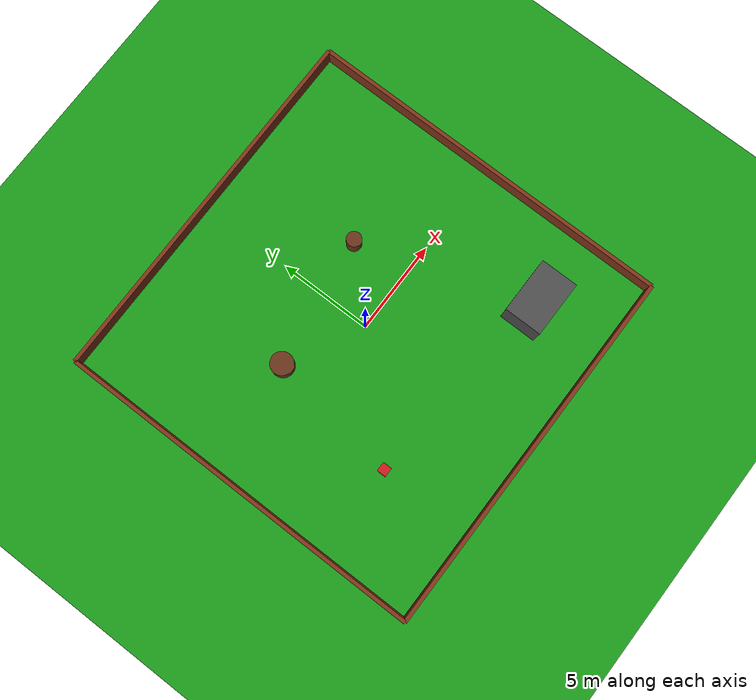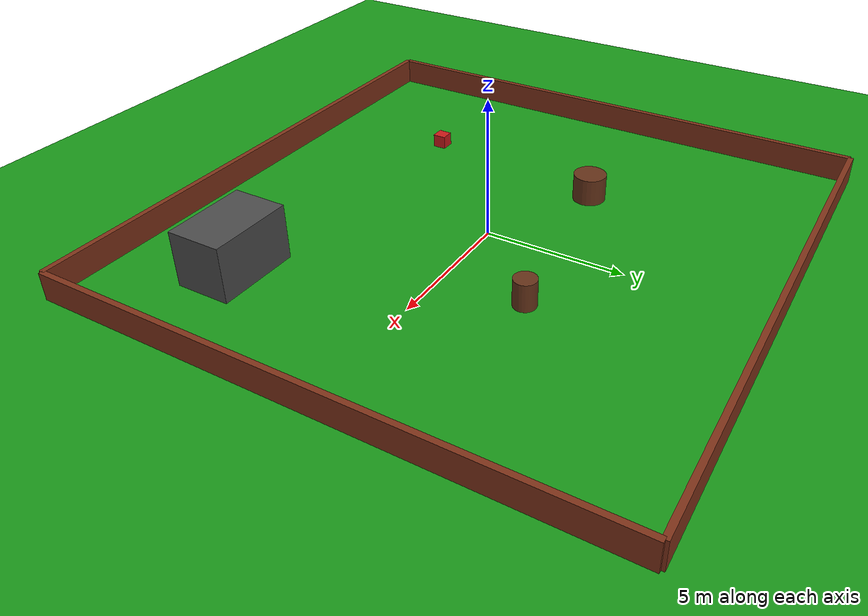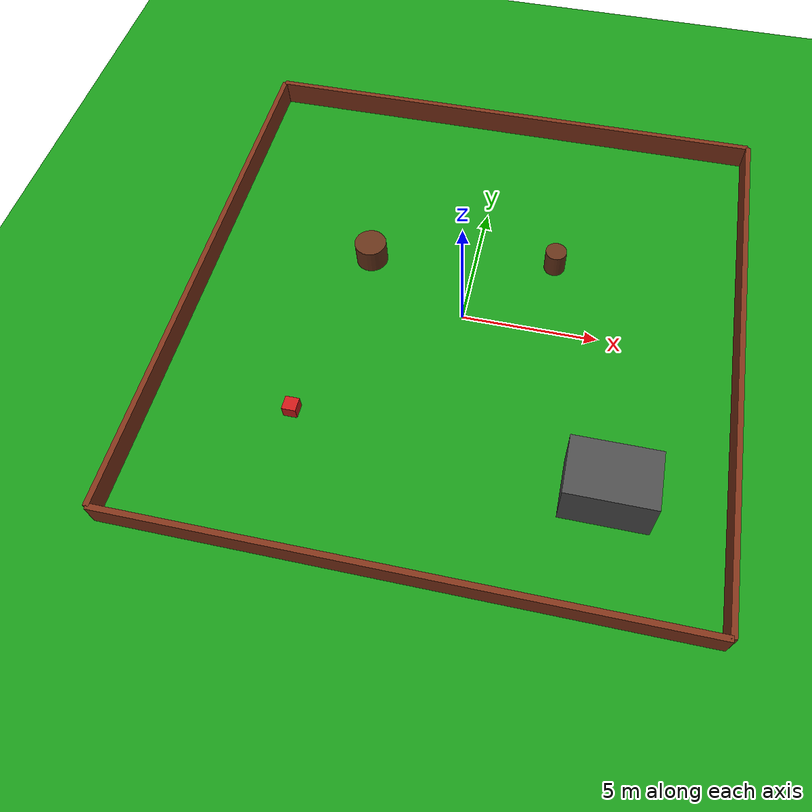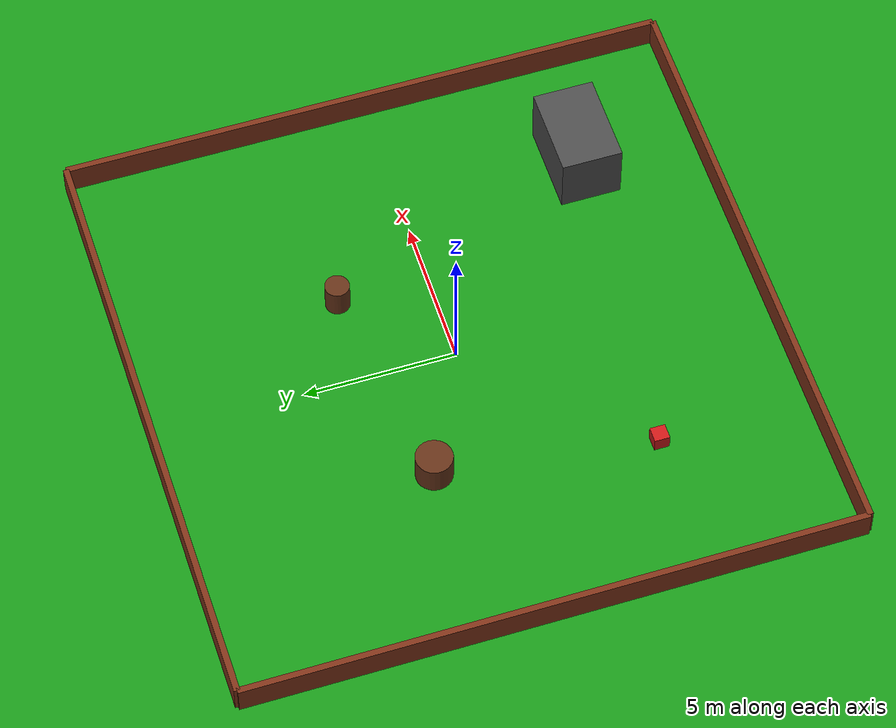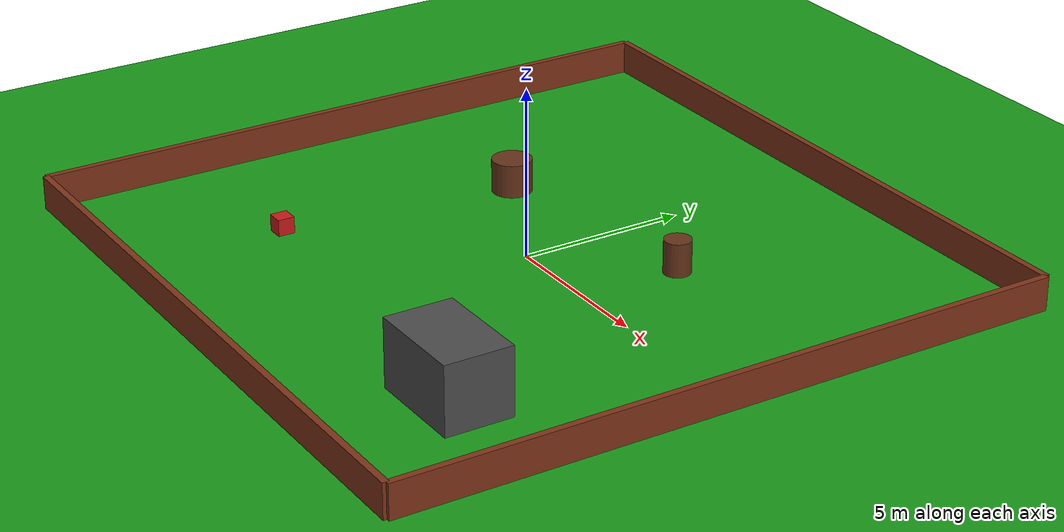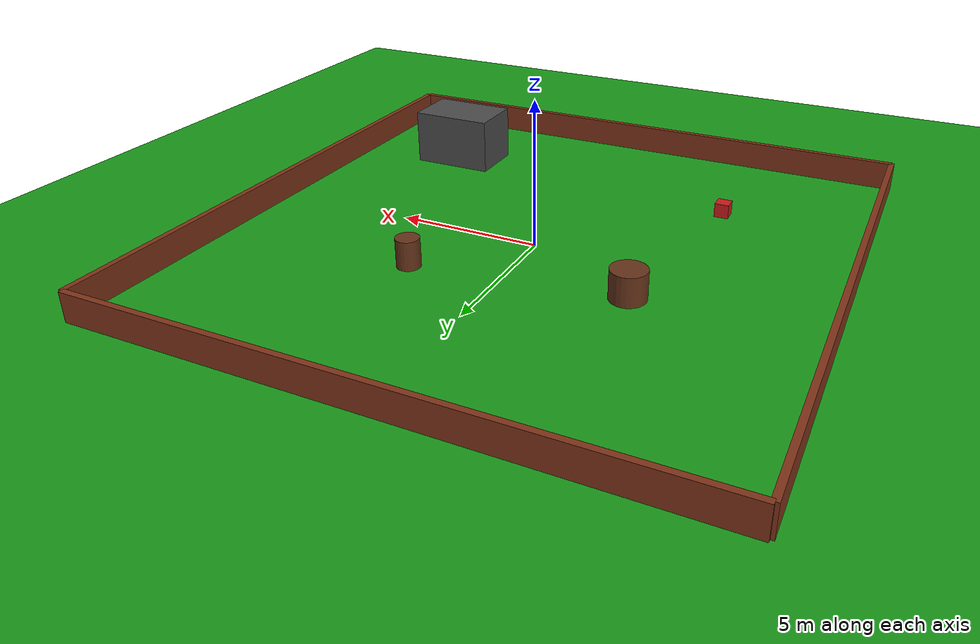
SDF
<?xml version="1.0" ?>
<sdf version="1.8">
  <world name="hard_lawn">

    <spherical_coordinates>
      <surface_model>EARTH_WGS84</surface_model>
      <world_frame_orientation>ENU</world_frame_orientation>
      <latitude_deg>0.0</latitude_deg>
      <longitude_deg>0.0</longitude_deg>
      <elevation>0.0</elevation>
      <heading_deg>0.0</heading_deg>
    </spherical_coordinates>

    <light type="directional" name="sun">
      <cast_shadows>true</cast_shadows>
      <pose>0 0 10 0 0 0</pose>
      <diffuse>0.8 0.8 0.8 1</diffuse>
      <specular>0.2 0.2 0.2 1</specular>
      <direction>-0.5 0.1 -0.9</direction>
    </light>

    <!-- Ground Plane (Grass) -->
    <model name="ground_plane">
      <static>true</static>
      <link name="link">
        <collision name="collision">
          <geometry>
            <plane>
              <normal>0 0 1</normal>
              <size>20 20</size>
            </plane>
          </geometry>
        </collision>
        <visual name="visual">
          <geometry>
            <plane>
              <normal>0 0 1</normal>
              <size>20 20</size>
            </plane>
          </geometry>
          <material>
            <ambient>0.1 0.6 0.1 1</ambient>
            <diffuse>0.1 0.6 0.1 1</diffuse>
            <specular>0 0 0 0</specular>
          </material>
        </visual>
      </link>
    </model>

    <!-- Outer Boundary Fence -->
    <model name="wall_north">
      <static>true</static>
      <pose>0 10 0.5 0 0 0</pose>
      <link name="link">
        <collision name="col"><geometry><box><size>20 0.2 1</size></box></geometry></collision>
        <visual name="vis"><geometry><box><size>20 0.2 1</size></box></geometry>
          <material><ambient>0.5 0.2 0.1 1</ambient></material>
        </visual>
      </link>
    </model>
    <model name="wall_south">
      <static>true</static>
      <pose>0 -10 0.5 0 0 0</pose>
      <link name="link">
        <collision name="col"><geometry><box><size>20 0.2 1</size></box></geometry></collision>
        <visual name="vis"><geometry><box><size>20 0.2 1</size></box></geometry>
          <material><ambient>0.5 0.2 0.1 1</ambient></material>
        </visual>
      </link>
    </model>
    <model name="wall_east">
      <static>true</static>
      <pose>10 0 0.5 0 0 1.5708</pose>
      <link name="link">
        <collision name="col"><geometry><box><size>20 0.2 1</size></box></geometry></collision>
        <visual name="vis"><geometry><box><size>20 0.2 1</size></box></geometry>
          <material><ambient>0.5 0.2 0.1 1</ambient></material>
        </visual>
      </link>
    </model>
    <model name="wall_west">
      <static>true</static>
      <pose>-10 0 0.5 0 0 1.5708</pose>
      <link name="link">
        <collision name="col"><geometry><box><size>20 0.2 1</size></box></geometry></collision>
        <visual name="vis"><geometry><box><size>20 0.2 1</size></box></geometry>
          <material><ambient>0.5 0.2 0.1 1</ambient></material>
        </visual>
      </link>
    </model>

    <!-- Static Obstacles (Trees/Pillars) -->
    <model name="tree1">
      <static>true</static>
      <pose>3 3 0.5 0 0 0</pose>
      <link name="link">
        <collision name="col"><geometry><cylinder><radius>0.4</radius><length>1</length></cylinder></geometry></collision>
        <visual name="vis"><geometry><cylinder><radius>0.4</radius><length>1</length></cylinder></geometry>
          <material><ambient>0.4 0.2 0.1 1</ambient></material>
        </visual>
      </link>
    </model>
    <model name="tree2">
      <static>true</static>
      <pose>-4 2 0.5 0 0 0</pose>
      <link name="link">
        <collision name="col"><geometry><cylinder><radius>0.6</radius><length>1</length></cylinder></geometry></collision>
        <visual name="vis"><geometry><cylinder><radius>0.6</radius><length>1</length></cylinder></geometry>
          <material><ambient>0.4 0.2 0.1 1</ambient></material>
        </visual>
      </link>
    </model>
    <model name="shed">
      <static>true</static>
      <pose>6 -6 1 0 0 0</pose>
      <link name="link">
        <collision name="col"><geometry><box><size>3 2 2</size></box></geometry></collision>
        <visual name="vis"><geometry><box><size>3 2 2</size></box></geometry>
          <material><ambient>0.3 0.3 0.3 1</ambient></material>
        </visual>
      </link>
    </model>

    <!-- Dynamic/Movable Obstacles for Course Correction -->
    <model name="movable_box1">
      <pose>-5 -5 0.25 0 0 0</pose>
      <link name="link">
        <inertial>
          <mass>10.0</mass>
          <inertia><ixx>0.16</ixx><ixy>0</ixy><ixz>0</ixz><iyy>0.16</iyy><iyz>0</iyz><izz>0.16</izz></inertia>
        </inertial>
        <collision name="col"><geometry><box><size>0.5 0.5 0.5</size></box></geometry></collision>
        <visual name="vis"><geometry><box><size>0.5 0.5 0.5</size></box></geometry>
          <material><ambient>0.8 0.1 0.1 1</ambient></material>
        </visual>
      </link>
    </model>

  </world>
</sdf>
